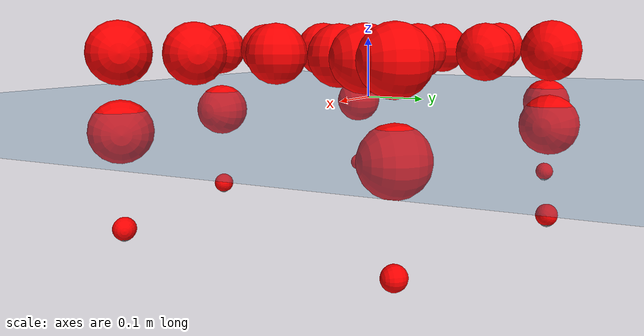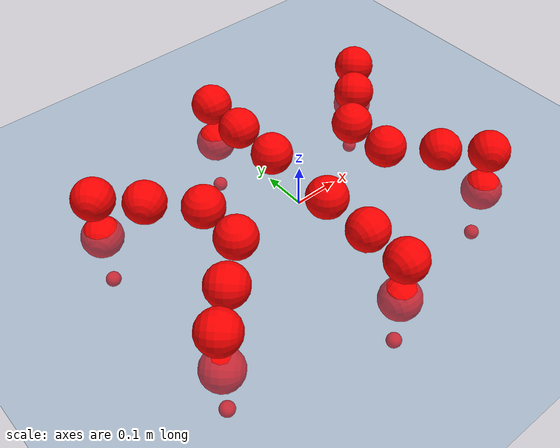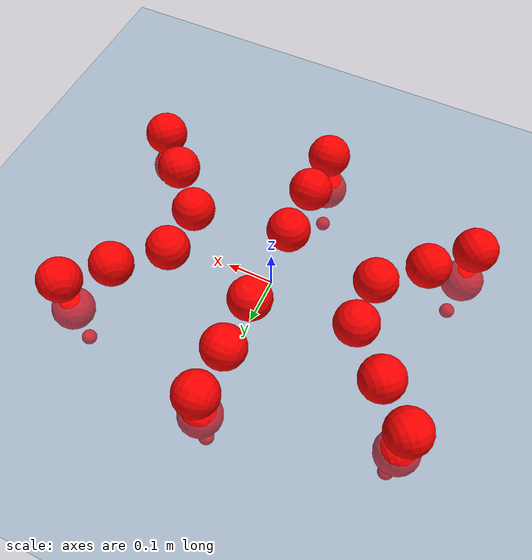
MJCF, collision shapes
<mujoco model="Golem">
  <compiler angle="radian" assetdir="assets" balanceinertia="true" inertiafromgeom="false"/>

  <option timestep="0.005" density="1.2" viscosity="2e-05"/>

  <size nkey="1"/>

  <visual>
    <quality shadowsize="8192"/>
    <map shadowclip="0.5"/>
  </visual>

  <default>
    <default class="/">
      <joint armature="0.01" damping="0.01" frictionloss="0.01"/>
      <geom contype="0" conaffinity="0" group="1" solref="-1000 -80"/>
      <site size="0.01 0.005 0.005" group="5"/>
      <general forcelimited="true" biastype="affine" gainprm="25" biasprm="0 -25 -0.5"/>
      <default class="visual">
        <geom type="mesh" group="2"/>
      </default>
      <default class="collision">
        <geom group="3"/>
      </default>
      <default class="foot">
        <geom size="0.01 0 0" condim="6" group="4" priority="1" solimp="0.015 1 0.01"/>
      </default>
      <default class="reward_collision_sphere">
        <geom group="5" rgba="1 0 0 1"/>
      </default>
    </default>
  </default>

  <asset>
    <texture type="skybox" colorspace="auto" name="//unnamed_texture_0" builtin="gradient" rgb1="0.95 0.95 0.95" rgb2="0.95 0.95 0.95" width="100" height="600"/>
    <texture type="2d" colorspace="auto" name="texplane" builtin="checker" rgb1="0.345 0.575 0.748" rgb2="0.345 0.575 0.748" markrgb="1 1 1" width="512" height="512"/>
    <material name="MatPlane" class="/" texture="texplane" texuniform="true" texrepeat="2 2" specular="0.9"/>
    <mesh name="body" class="/" file="body.stl" scale="0.001 0.001 0.001"/>
    <mesh name="coxa" class="/" file="coxa.stl" scale="0.001 0.001 0.001"/>
    <mesh name="femur" class="/" file="femur.stl" scale="0.001 0.001 0.001"/>
    <mesh name="tibia" class="/" file="tibia.stl" scale="0.001 0.001 0.001"/>
    <mesh name="tarsus" class="/" file="tarsus.stl" scale="0.001 0.001 0.001"/>
  </asset>

  <worldbody>
    <geom name="floor" class="/" size="100 100 0.125" type="plane" group="0" material="MatPlane"/>
    <light name="toplight_shadow" class="/" pos="0 0 5" dir="0.0990148 0.0990148 -0.990148" type="directional" ambient="0.04 0.04 0.04" diffuse="0.55 0.55 0.55" specular="0.12 0.12 0.12"/>
    <light name="toplight_fill" class="/" pos="0 0 5" dir="0.0990148 0.0990148 -0.990148" type="directional" castshadow="false" ambient="0.04 0.04 0.04" diffuse="0.3 0.3 0.3" specular="0.08 0.08 0.08"/>
    <body name="trunk" pos="0.000747976 0.00280084 0.00282841" quat="1 -3.6866e-05 2.17787e-05 3.67482e-05">
      <inertial pos="0.00197335 0.000239818 -0.00236394" quat="0.99999 -0.00249344 0.00235292 0.00272889" mass="5.77913" diaginertia="0.037188 0.00915284 0.021562"/>
      <joint name="//unnamed_joint_0" type="free"/>
      <geom name="//unnamed_geom_1" class="/" pos="0 0 0.0745041" quat="1 0 0 0" type="mesh" rgba="0.9 0.9 0.9 1" mesh="body"/>
      <site name="imu" class="/" pos="0.17703 0.007643 0.125551" size="0.0115151"/>
      <camera name="track" class="/" pos="0 -1.95554 0" quat="0.707107 0.707107 0 0" mode="trackcom"/>
      <camera name="ego_camera" class="/" pos="0.170641 0 0.116413" quat="-0.5 -0.5 0.5 0.5"/>
      <body name="coxa_RR" pos="-0.233763 -0.0816563 0.0751219" quat="0.382372 0.000252621 -7.39358e-05 -0.924008">
        <inertial pos="-0.00011616 -0.000288994 -0.00243494" quat="0.999921 0.000691811 0.00331 0.0121047" mass="0.306515" diaginertia="0.0380132 0.00872587 0.0209292"/>
        <joint name="coxa_joint_RR" class="/" pos="0 0 0" axis="0.00847731 0.00397446 -0.999956" stiffness="0.00156022" range="-3.14786 3.14624" armature="0.010546" damping="0" frictionloss="0.0115034"/>
        <geom name="//unnamed_geom_2" class="/" type="mesh" rgba="0.2 0.2 0.2 1" mesh="coxa"/>
        <geom name="//unnamed_geom_3" class="reward_collision_sphere" size="0.0460602" pos="-0.0393786 0 0"/>
        <body name="femur_RR" pos="0.0765903 -0.00198062 -0.00549928" quat="0.499966 -0.499947 0.500042 0.500045">
          <inertial pos="-0.00282236 -0.00250787 0.000606583" quat="0.999954 -0.00825639 0.0005935 0.00492821" mass="0.305899" diaginertia="0.0389636 0.0091473 0.0213337"/>
          <joint name="femur_joint_RR" class="/" pos="0 0 0" axis="-0.00605055 0.00625109 -0.999962" range="-3.17135 3.08748" armature="0.0106603" damping="0.00701396" frictionloss="0.0126003"/>
          <geom name="//unnamed_geom_4" class="/" type="mesh" rgba="0.9 0.9 0.9 1" mesh="femur"/>
          <geom name="//unnamed_geom_5" class="reward_collision_sphere" size="0.0460602"/>
          <body name="tibia_RR" pos="-0.0022071 -0.106586 0.00040352" quat="-6.61641e-05 1 -5.30733e-05 0.000156039">
            <inertial pos="-0.00161297 -0.000881885 0.00098141" quat="0.999992 -0.00170853 -0.00112064 -0.00347423" mass="0.302808" diaginertia="0.0379254 0.00845098 0.0199249"/>
            <joint name="tibia_joint_RR" class="/" pos="0 0 0" axis="-0.00690735 0.00340998 0.99997" range="-3.08547 3.19418" armature="0.0113852" damping="0.00178008" frictionloss="0.0116002"/>
            <geom name="//unnamed_geom_6" class="/" type="mesh" rgba="0.2 0.2 0.2 1" mesh="tibia"/>
            <geom name="//unnamed_geom_7" class="reward_collision_sphere" size="0.0460602"/>
            <body name="tarsus_RR" pos="0.117377 -0.000408741 0.00126138" quat="1 1.29533e-05 -6.26564e-05 -6.46873e-06">
              <inertial pos="0.0808227 3.23211e-06 0.00283663" quat="0.502957 0.494338 0.499759 0.502896" mass="0.307469" diaginertia="0.0394974 0.00918907 0.0214734"/>
              <joint name="tarsus_joint_RR" class="/" pos="0 0 0" axis="0.00161291 -0.00222011 0.999996" range="-3.17169 3.19302" armature="0.0105888" damping="0.0347001" frictionloss="0.00991513"/>
              <geom name="//unnamed_geom_8" class="/" type="mesh" rgba="0.9 0.9 0.9 1" mesh="tarsus"/>
              <geom name="foot_1" class="foot" size="0.011298" pos="0.147014 0 0" quat="0 -0.707107 0 0.707107"/>
              <geom name="//unnamed_geom_10" class="reward_collision_sphere" size="0.0460602"/>
              <geom name="//unnamed_geom_11" class="reward_collision_sphere" size="0.0172726" pos="0.141107 0 0"/>
              <site name="foot_1" class="foot" pos="0.147014 0 0" quat="0 -0.707107 0 0.707107" size="0.0115151"/>
            </body>
          </body>
        </body>
      </body>
      <body name="coxa_RM" pos="0.000543515 -0.128405 0.0775114" quat="0.707097 -0.00135994 0.000433885 -0.707116">
        <inertial pos="0.00251931 -0.000226259 -0.00261166" quat="0.999907 0.00526297 -0.0123899 -0.00195736" mass="0.294169" diaginertia="0.0374615 0.00884986 0.0220089"/>
        <joint name="coxa_joint_RM" class="/" pos="0 0 0" axis="-0.00437053 0.00173344 -0.999989" stiffness="0.00256778" range="-3.1878 3.14837" armature="0.0115413" damping="0.00412253" frictionloss="0.0117667"/>
        <geom name="//unnamed_geom_12" class="/" type="mesh" rgba="0.2 0.2 0.2 1" mesh="coxa"/>
        <geom name="//unnamed_geom_13" class="reward_collision_sphere" size="0.0460602" pos="-0.0393786 0 0"/>
        <body name="femur_RM" pos="0.0785725 0.00170269 -0.00169467" quat="0.49984 -0.50013 0.500355 0.499674">
          <inertial pos="0.00113413 -0.00275864 -0.000162169" quat="0.999935 -0.0054222 -0.00348853 -0.00935257" mass="0.310232" diaginertia="0.039148 0.00874132 0.0214771"/>
          <joint name="femur_joint_RM" class="/" pos="0 0 0" axis="-0.000341694 -0.0138363 -0.999904" stiffness="0.00805315" range="-3.15646 3.12982" armature="0.00994788" damping="0.025672" frictionloss="0.0115767"/>
          <geom name="//unnamed_geom_14" class="/" type="mesh" rgba="0.9 0.9 0.9 1" mesh="femur"/>
          <geom name="//unnamed_geom_15" class="reward_collision_sphere" size="0.0460602"/>
          <body name="tibia_RM" pos="0.000197489 -0.104376 0.000335839" quat="-0.000234295 1 -0.000269936 0.000323548">
            <inertial pos="0.00263353 -0.00052227 -0.000927722" quat="0.999975 0.00593309 -0.000874084 0.00387197" mass="0.290495" diaginertia="0.0380131 0.00869459 0.0207096"/>
            <joint name="tibia_joint_RM" class="/" pos="0 0 0" axis="0.00134353 0.0028377 0.999995" range="-3.168 3.13126" armature="0.0113718" damping="0.0147174" frictionloss="0.0121676"/>
            <geom name="//unnamed_geom_16" class="/" type="mesh" rgba="0.2 0.2 0.2 1" mesh="tibia"/>
            <geom name="//unnamed_geom_17" class="reward_collision_sphere" size="0.0460602"/>
            <body name="tarsus_RM" pos="0.114081 -0.00011111 0.00292338" quat="1 3.29933e-06 0.00011347 -0.000277994">
              <inertial pos="0.0804818 -0.00235238 0.00245715" quat="0.498301 0.500727 0.501711 0.499254" mass="0.30854" diaginertia="0.0383272 0.00865058 0.0208612"/>
              <joint name="tarsus_joint_RM" class="/" pos="0 0 0" axis="-0.000350288 -0.00369504 0.999993" range="-3.08483 3.10511" armature="0.0129857" damping="0.00940669" frictionloss="0.0115169"/>
              <geom name="//unnamed_geom_18" class="/" type="mesh" rgba="0.9 0.9 0.9 1" mesh="tarsus"/>
              <geom name="foot_2" class="foot" size="0.0122358" pos="0.147014 0 0" quat="0 -0.707107 0 0.707107"/>
              <geom name="//unnamed_geom_20" class="reward_collision_sphere" size="0.0460602"/>
              <geom name="//unnamed_geom_21" class="reward_collision_sphere" size="0.0172726" pos="0.141107 0 0"/>
              <site name="foot_2" class="foot" pos="0.147014 0 0" quat="0 -0.707107 0 0.707107" size="0.0115151"/>
            </body>
          </body>
        </body>
      </body>
      <body name="coxa_RF" pos="0.232937 -0.0808589 0.0755473" quat="0.923833 2.73773e-05 -0.000302941 -0.382796">
        <inertial pos="-0.00170419 0.00284919 -0.000943592" quat="1 0.000183437 0.000861037 -6.13547e-06" mass="0.306101" diaginertia="0.0391218 0.00920774 0.0207038"/>
        <joint name="coxa_joint_RF" class="/" pos="0 0 0" axis="-0.00407995 -0.00247003 -0.999989" range="-3.15907 3.16556" armature="0.0125672" damping="0.0188917" frictionloss="0.0109472"/>
        <geom name="//unnamed_geom_22" class="/" type="mesh" rgba="0.2 0.2 0.2 1" mesh="coxa"/>
        <geom name="//unnamed_geom_23" class="reward_collision_sphere" size="0.0460602" pos="-0.0393786 0 0"/>
        <body name="femur_RF" pos="0.0797232 -0.00194541 0.00140427" quat="0.500085 -0.500595 0.500353 0.498966">
          <inertial pos="0.00264849 -0.00277855 -0.00116148" quat="0.999913 -0.00631033 -0.000700198 -0.011569" mass="0.294276" diaginertia="0.0389195 0.00832919 0.0209378"/>
          <joint name="femur_joint_RF" class="/" pos="0 0 0" axis="-0.000198851 -0.00196168 -0.999998" range="-3.15055 3.17793" armature="0.0104328" damping="0.0132605" frictionloss="0.0127905"/>
          <geom name="//unnamed_geom_24" class="/" type="mesh" rgba="0.9 0.9 0.9 1" mesh="femur"/>
          <geom name="//unnamed_geom_25" class="reward_collision_sphere" size="0.0460602"/>
          <body name="tibia_RF" pos="-0.00180163 -0.104301 -0.000476495" quat="-0.000230474 1 0.000152315 0.00026278">
            <inertial pos="-3.79148e-05 0.00104415 -0.000908608" quat="1 -0.000801729 -0.000280488 0.000217131" mass="0.313297" diaginertia="0.038037 0.00935058 0.021353"/>
            <joint name="tibia_joint_RF" class="/" pos="0 0 0" axis="-0.000859874 -0.0017057 0.999998" range="-3.16873 3.12951" armature="0.0102771" damping="0.00508503" frictionloss="0.0114589"/>
            <geom name="//unnamed_geom_26" class="/" type="mesh" rgba="0.2 0.2 0.2 1" mesh="tibia"/>
            <geom name="//unnamed_geom_27" class="reward_collision_sphere" size="0.0460602"/>
            <body name="tarsus_RF" pos="0.11218 0.000645237 0.00227886" quat="1 -0.000238834 0.000146615 -0.000380852">
              <inertial pos="0.0786428 0.000886332 -0.000387068" quat="0.502358 0.500278 0.501377 0.495963" mass="0.308833" diaginertia="0.039264 0.00886716 0.0221671"/>
              <joint name="tarsus_joint_RF" class="/" pos="0 0 0" axis="0.00845211 -0.0121114 0.999891" range="-3.19008 3.11179" armature="0.0130486" damping="0.0119547" frictionloss="0.00989723"/>
              <geom name="//unnamed_geom_28" class="/" type="mesh" rgba="0.9 0.9 0.9 1" mesh="tarsus"/>
              <geom name="foot_3" class="foot" size="0.0124147" pos="0.147014 0 0" quat="0 -0.707107 0 0.707107"/>
              <geom name="//unnamed_geom_30" class="reward_collision_sphere" size="0.0460602"/>
              <geom name="//unnamed_geom_31" class="reward_collision_sphere" size="0.0172726" pos="0.141107 0 0"/>
              <site name="foot_3" class="foot" pos="0.147014 0 0" quat="0 -0.707107 0 0.707107" size="0.0115151"/>
            </body>
          </body>
        </body>
      </body>
      <body name="coxa_LR" pos="-0.233982 0.0807954 0.0778074" quat="0.382444 -3.99982e-05 0.000153559 0.923978">
        <inertial pos="-0.00097723 0.0025373 0.000430815" quat="0.999998 0.000882515 -0.00168205 0.00112851" mass="0.304479" diaginertia="0.0397351 0.0091747 0.0225991"/>
        <joint name="coxa_joint_LR" class="/" pos="0 0 0" axis="-0.000549367 -0.00605558 -0.999982" stiffness="0.0103754" range="-3.17239 3.08276" armature="0.00989573" damping="0" frictionloss="0.0103166"/>
        <geom name="//unnamed_geom_32" class="/" type="mesh" rgba="0.2 0.2 0.2 1" mesh="coxa"/>
        <geom name="//unnamed_geom_33" class="reward_collision_sphere" size="0.0460602" pos="-0.0393786 0 0"/>
        <body name="femur_LR" pos="0.080817 -0.00169954 0.0015805" quat="0.500056 -0.500215 0.499907 0.499822">
          <inertial pos="-0.00230746 -0.000900616 0.000637826" quat="0.9999 0.00110842 0.00568275 0.0129034" mass="0.30485" diaginertia="0.0386522 0.00908691 0.0214457"/>
          <joint name="femur_joint_LR" class="/" pos="0 0 0" axis="-0.000566535 0.013754 0.999905" stiffness="0.000766365" range="-3.10253 3.15903" armature="0.0119667" damping="0" frictionloss="0.0114425"/>
          <geom name="//unnamed_geom_34" class="/" type="mesh" rgba="0.9 0.9 0.9 1" mesh="femur"/>
          <geom name="//unnamed_geom_35" class="reward_collision_sphere" size="0.0460602"/>
          <body name="tibia_LR" pos="-0.00197304 -0.1061 0.00121924" quat="0.000192709 1 0.000609139 9.49461e-05">
            <inertial pos="-0.000879233 -0.000891454 0.000250953" quat="1 -0.000253115 -0.000922943 0.000209995" mass="0.324343" diaginertia="0.0398135 0.00904678 0.0222557"/>
            <joint name="tibia_joint_LR" class="/" pos="0 0 0" axis="-0.00917356 0.00923238 -0.999915" range="-3.19607 3.09665" armature="0.0119851" damping="0" frictionloss="0.0109752"/>
            <geom name="//unnamed_geom_36" class="/" type="mesh" rgba="0.2 0.2 0.2 1" mesh="tibia"/>
            <geom name="//unnamed_geom_37" class="reward_collision_sphere" size="0.0460602"/>
            <body name="tarsus_LR" pos="0.114344 0.0011049 0.00236951" quat="1 -0.000370298 0.000149328 0.000269923">
              <inertial pos="0.0793044 0.000110583 -0.000225245" quat="0.499035 0.500671 0.499322 0.50097" mass="0.302521" diaginertia="0.0401544 0.0088855 0.0221827"/>
              <joint name="tarsus_joint_LR" class="/" pos="0 0 0" axis="0.00474895 0.00268377 -0.999985" range="-3.17629 3.10264" armature="0.0111112" damping="0" frictionloss="0.0128201"/>
              <geom name="//unnamed_geom_38" class="/" type="mesh" rgba="0.9 0.9 0.9 1" mesh="tarsus"/>
              <geom name="foot_4" class="foot" size="0.0127962" pos="0.147014 0 0" quat="0.707107 0 -0.707107 0"/>
              <geom name="//unnamed_geom_40" class="reward_collision_sphere" size="0.0460602"/>
              <geom name="//unnamed_geom_41" class="reward_collision_sphere" size="0.0172726" pos="0.141107 0 0"/>
              <site name="foot_4" class="foot" pos="0.147014 0 0" quat="0.707107 0 -0.707107 0" size="0.0115151"/>
            </body>
          </body>
        </body>
      </body>
      <body name="coxa_LM" pos="0.00177321 0.129393 0.0760796" quat="0.707823 -0.000949041 -0.000861063 0.706389">
        <inertial pos="0.00194663 -0.00233717 -0.00163455" quat="0.999908 -0.0102691 0.00869716 -0.0014401" mass="0.297122" diaginertia="0.0365068 0.00864342 0.0207655"/>
        <joint name="coxa_joint_LM" class="/" pos="0 0 0" axis="-0.000239658 0.0002963 -1" range="-3.10196 3.11765" armature="0.0130477" damping="0.0246044" frictionloss="0.0127326"/>
        <geom name="//unnamed_geom_42" class="/" type="mesh" rgba="0.2 0.2 0.2 1" mesh="coxa"/>
        <geom name="//unnamed_geom_43" class="reward_collision_sphere" size="0.0460602" pos="-0.0393786 0 0"/>
        <body name="femur_LM" pos="0.0749518 0.00167099 0.000127734" quat="0.50056 -0.499037 0.500274 0.500128">
          <inertial pos="0.00281572 -0.00193754 5.77558e-06" quat="0.999992 -0.000681957 -0.000710244 0.00386346" mass="0.312032" diaginertia="0.0411494 0.00915811 0.0224651"/>
          <joint name="femur_joint_LM" class="/" pos="0 0 0" axis="0.0145038 -0.00143824 0.999894" stiffness="0.00464555" range="-3.13827 3.09801" armature="0.0130108" damping="0" frictionloss="0.0117984"/>
          <geom name="//unnamed_geom_44" class="/" type="mesh" rgba="0.9 0.9 0.9 1" mesh="femur"/>
          <geom name="//unnamed_geom_45" class="reward_collision_sphere" size="0.0460602"/>
          <body name="tibia_LM" pos="-0.00349636 -0.105127 -0.00128455" quat="6.82715e-06 1 -2.07438e-06 -4.97066e-06">
            <inertial pos="0.000824856 -0.000730572 0.00199007" quat="0.999911 0.00733193 -0.000129709 -0.0111753" mass="0.296021" diaginertia="0.0399686 0.00907972 0.0219247"/>
            <joint name="tibia_joint_LM" class="/" pos="0 0 0" axis="-0.00176148 -0.00787034 -0.999967" range="-3.13807 3.17647" armature="0.0122048" damping="0.0137415" frictionloss="0.00988656"/>
            <geom name="//unnamed_geom_46" class="/" type="mesh" rgba="0.2 0.2 0.2 1" mesh="tibia"/>
            <geom name="//unnamed_geom_47" class="reward_collision_sphere" size="0.0460602"/>
            <body name="tarsus_LM" pos="0.112924 8.49123e-05 0.00247723" quat="1 -0.000108746 -0.000133857 -9.75757e-05">
              <inertial pos="0.076064 0.000375574 -0.00276966" quat="0.499506 0.499887 0.500133 0.500475" mass="0.315131" diaginertia="0.0377192 0.00882371 0.0220021"/>
              <joint name="tarsus_joint_LM" class="/" pos="0 0 0" axis="-0.00168934 -0.00451408 -0.999988" stiffness="0.000367068" range="-3.13848 3.16351" armature="0.0123799" damping="0.0127981" frictionloss="0.0129756"/>
              <geom name="//unnamed_geom_48" class="/" type="mesh" rgba="0.9 0.9 0.9 1" mesh="tarsus"/>
              <geom name="foot_5" class="foot" size="0.0127184" pos="0.147014 0 0" quat="0.707107 0 -0.707107 0"/>
              <geom name="//unnamed_geom_50" class="reward_collision_sphere" size="0.0460602"/>
              <geom name="//unnamed_geom_51" class="reward_collision_sphere" size="0.0172726" pos="0.141107 0 0"/>
              <site name="foot_5" class="foot" pos="0.147014 0 0" quat="0.707107 0 -0.707107 0" size="0.0115151"/>
            </body>
          </body>
        </body>
      </body>
      <body name="coxa_LF" pos="0.233824 0.0823766 0.0741544" quat="0.9239 -5.8376e-05 0.000458679 0.382635">
        <inertial pos="0.000714795 -0.000678911 -0.00238905" quat="0.999917 0.000756202 -0.0103534 0.00760933" mass="0.292566" diaginertia="0.0382055 0.00887596 0.0212639"/>
        <joint name="coxa_joint_LF" class="/" pos="0 0 0" axis="0.00306876 0.000949396 -0.999995" stiffness="0.0231715" range="-3.19468 3.13998" armature="0.012262" damping="0.0156553" frictionloss="0.00999556"/>
        <geom name="//unnamed_geom_52" class="/" type="mesh" rgba="0.2 0.2 0.2 1" mesh="coxa"/>
        <geom name="//unnamed_geom_53" class="reward_collision_sphere" size="0.0460602" pos="-0.0393786 0 0"/>
        <body name="femur_LF" pos="0.0780804 -0.000875799 0.000167257" quat="0.500035 -0.499983 0.499692 0.500289">
          <inertial pos="0.000244275 0.000203734 -0.000917915" quat="0.99997 -0.00620231 0.00158887 -0.00430747" mass="0.296915" diaginertia="0.038125 0.00877415 0.0202027"/>
          <joint name="femur_joint_LF" class="/" pos="0 0 0" axis="-0.000265318 -0.00388765 0.999992" range="-3.08471 3.15257" armature="0.0124183" damping="0.013412" frictionloss="0.010719"/>
          <geom name="//unnamed_geom_54" class="/" type="mesh" rgba="0.9 0.9 0.9 1" mesh="femur"/>
          <geom name="//unnamed_geom_55" class="reward_collision_sphere" size="0.0460602"/>
          <body name="tibia_LF" pos="-0.00121348 -0.105298 0.00267738" quat="-0.000266374 1 -6.69623e-05 -0.000264409">
            <inertial pos="0.000173536 0.00242981 0.0026708" quat="0.999963 -0.0057403 -0.00612318 -0.00171771" mass="0.29531" diaginertia="0.0381553 0.00885007 0.0215087"/>
            <joint name="tibia_joint_LF" class="/" pos="0 0 0" axis="-0.000540902 -2.90033e-05 -1" range="-3.13297 3.12167" armature="0.00979183" damping="0" frictionloss="0.0131329"/>
            <geom name="//unnamed_geom_56" class="/" type="mesh" rgba="0.2 0.2 0.2 1" mesh="tibia"/>
            <geom name="//unnamed_geom_57" class="reward_collision_sphere" size="0.0460602"/>
            <body name="tarsus_LF" pos="0.118413 0.00161838 0.0008835" quat="1 0.00010762 -0.000142383 -0.000378276">
              <inertial pos="0.0803465 -0.00101526 -0.00276417" quat="0.498603 0.51037 0.495605 0.495271" mass="0.322883" diaginertia="0.0393288 0.00936575 0.0225987"/>
              <joint name="tarsus_joint_LF" class="/" pos="0 0 0" axis="-0.00390497 -0.0135079 -0.999901" stiffness="0.0362521" range="-3.18406 3.19327" armature="0.0113617" damping="0.0196621" frictionloss="0.0120593"/>
              <geom name="//unnamed_geom_58" class="/" type="mesh" rgba="0.9 0.9 0.9 1" mesh="tarsus"/>
              <geom name="foot_6" class="foot" size="0.0113451" pos="0.147014 0 0" quat="0.707107 0 -0.707107 0"/>
              <geom name="//unnamed_geom_60" class="reward_collision_sphere" size="0.0460602"/>
              <geom name="//unnamed_geom_61" class="reward_collision_sphere" size="0.0172726" pos="0.141107 0 0"/>
              <site name="foot_6" class="foot" pos="0.147014 0 0" quat="0.707107 0 -0.707107 0" size="0.0115151"/>
            </body>
          </body>
        </body>
      </body>
    </body>
  </worldbody>

  <contact>
    <pair class="/" geom1="floor" geom2="foot_1" name="//unnamed_contact_0"/>
    <pair class="/" geom1="floor" geom2="foot_2" name="//unnamed_contact_1"/>
    <pair class="/" geom1="floor" geom2="foot_3" name="//unnamed_contact_2"/>
    <pair class="/" geom1="floor" geom2="foot_4" name="//unnamed_contact_3"/>
    <pair class="/" geom1="floor" geom2="foot_5" name="//unnamed_contact_4"/>
    <pair class="/" geom1="floor" geom2="foot_6" name="//unnamed_contact_5"/>
  </contact>

  <actuator>
    <general name="coxa_joint_RR" class="/" joint="coxa_joint_RR" forcerange="-8.20545 8.20545" gainprm="27.2871" biasprm="0 -27.2871 -0.595281"/>
    <general name="femur_joint_RR" class="/" joint="femur_joint_RR" forcerange="-8.41559 8.41559" gainprm="27.2871" biasprm="0 -27.2871 -0.595281"/>
    <general name="tibia_joint_RR" class="/" joint="tibia_joint_RR" forcerange="-8.49436 8.49436" gainprm="27.2871" biasprm="0 -27.2871 -0.595281"/>
    <general name="tarsus_joint_RR" class="/" joint="tarsus_joint_RR" forcerange="-9.13218 9.13218" gainprm="27.2871" biasprm="0 -27.2871 -0.595281"/>
    <general name="coxa_joint_RM" class="/" joint="coxa_joint_RM" forcerange="-8.26418 8.26418" gainprm="27.2871" biasprm="0 -27.2871 -0.595281"/>
    <general name="femur_joint_RM" class="/" joint="femur_joint_RM" forcerange="-8.17133 8.17133" gainprm="27.2871" biasprm="0 -27.2871 -0.595281"/>
    <general name="tibia_joint_RM" class="/" joint="tibia_joint_RM" forcerange="-7.53543 7.53543" gainprm="27.2871" biasprm="0 -27.2871 -0.595281"/>
    <general name="tarsus_joint_RM" class="/" joint="tarsus_joint_RM" forcerange="-8.17058 8.17058" gainprm="27.2871" biasprm="0 -27.2871 -0.595281"/>
    <general name="coxa_joint_RF" class="/" joint="coxa_joint_RF" forcerange="-8.10003 8.10003" gainprm="27.2871" biasprm="0 -27.2871 -0.595281"/>
    <general name="femur_joint_RF" class="/" joint="femur_joint_RF" forcerange="-7.51527 7.51527" gainprm="27.2871" biasprm="0 -27.2871 -0.595281"/>
    <general name="tibia_joint_RF" class="/" joint="tibia_joint_RF" forcerange="-8.37887 8.37887" gainprm="27.2871" biasprm="0 -27.2871 -0.595281"/>
    <general name="tarsus_joint_RF" class="/" joint="tarsus_joint_RF" forcerange="-9.29522 9.29522" gainprm="27.2871" biasprm="0 -27.2871 -0.595281"/>
    <general name="coxa_joint_LR" class="/" joint="coxa_joint_LR" forcerange="-8.46055 8.46055" gainprm="27.2871" biasprm="0 -27.2871 -0.595281"/>
    <general name="femur_joint_LR" class="/" joint="femur_joint_LR" forcerange="-8.09285 8.09285" gainprm="27.2871" biasprm="0 -27.2871 -0.595281"/>
    <general name="tibia_joint_LR" class="/" joint="tibia_joint_LR" forcerange="-8.72527 8.72527" gainprm="27.2871" biasprm="0 -27.2871 -0.595281"/>
    <general name="tarsus_joint_LR" class="/" joint="tarsus_joint_LR" forcerange="-9.12689 9.12689" gainprm="27.2871" biasprm="0 -27.2871 -0.595281"/>
    <general name="coxa_joint_LM" class="/" joint="coxa_joint_LM" forcerange="-9.01535 9.01535" gainprm="27.2871" biasprm="0 -27.2871 -0.595281"/>
    <general name="femur_joint_LM" class="/" joint="femur_joint_LM" forcerange="-8.45309 8.45309" gainprm="27.2871" biasprm="0 -27.2871 -0.595281"/>
    <general name="tibia_joint_LM" class="/" joint="tibia_joint_LM" forcerange="-8.66479 8.66479" gainprm="27.2871" biasprm="0 -27.2871 -0.595281"/>
    <general name="tarsus_joint_LM" class="/" joint="tarsus_joint_LM" forcerange="-8.08377 8.08377" gainprm="27.2871" biasprm="0 -27.2871 -0.595281"/>
    <general name="coxa_joint_LF" class="/" joint="coxa_joint_LF" forcerange="-8.44776 8.44776" gainprm="27.2871" biasprm="0 -27.2871 -0.595281"/>
    <general name="femur_joint_LF" class="/" joint="femur_joint_LF" forcerange="-8.22515 8.22515" gainprm="27.2871" biasprm="0 -27.2871 -0.595281"/>
    <general name="tibia_joint_LF" class="/" joint="tibia_joint_LF" forcerange="-8.73226 8.73226" gainprm="27.2871" biasprm="0 -27.2871 -0.595281"/>
    <general name="tarsus_joint_LF" class="/" joint="tarsus_joint_LF" forcerange="-7.51328 7.51328" gainprm="27.2871" biasprm="0 -27.2871 -0.595281"/>
  </actuator>

  <sensor>
    <gyro site="imu" name="imu_angular_velocity"/>
    <velocimeter site="imu" name="imu_linear_velocity"/>
    <framelinvel objtype="site" objname="foot_1" name="foot_1_global_linear_velocity"/>
    <framelinvel objtype="site" objname="foot_2" name="foot_2_global_linear_velocity"/>
    <framelinvel objtype="site" objname="foot_3" name="foot_3_global_linear_velocity"/>
    <framelinvel objtype="site" objname="foot_4" name="foot_4_global_linear_velocity"/>
    <framelinvel objtype="site" objname="foot_5" name="foot_5_global_linear_velocity"/>
    <framelinvel objtype="site" objname="foot_6" name="foot_6_global_linear_velocity"/>
  </sensor>

  <keyframe>
    <key name="home" qpos="0 0 0.1457 1 0 0 0 0 0 0 0 0 0 0 0 0 0 0 0 0 0 0 0 0 0 0 0 0 0 0 0"/>
  </keyframe>
</mujoco>
